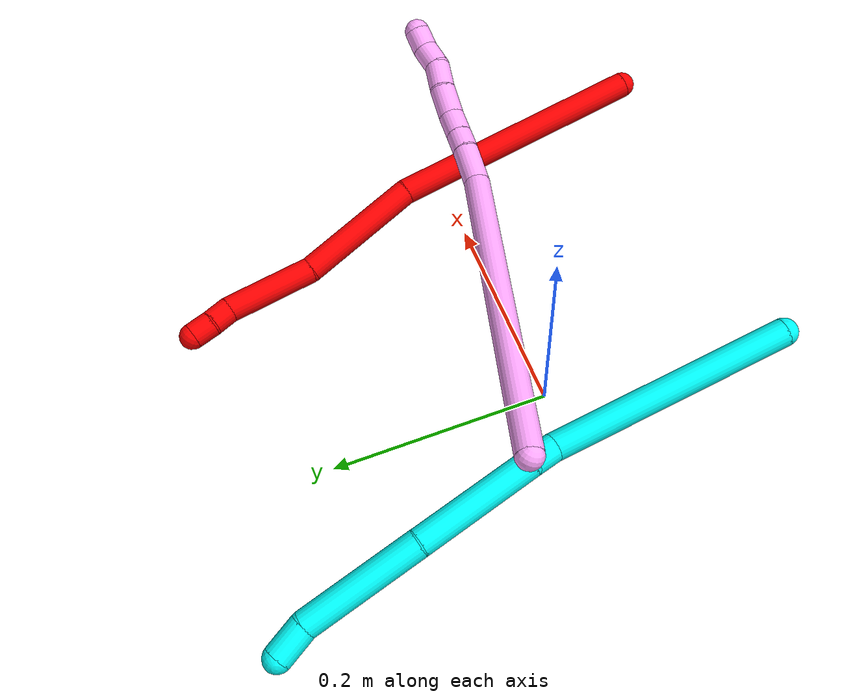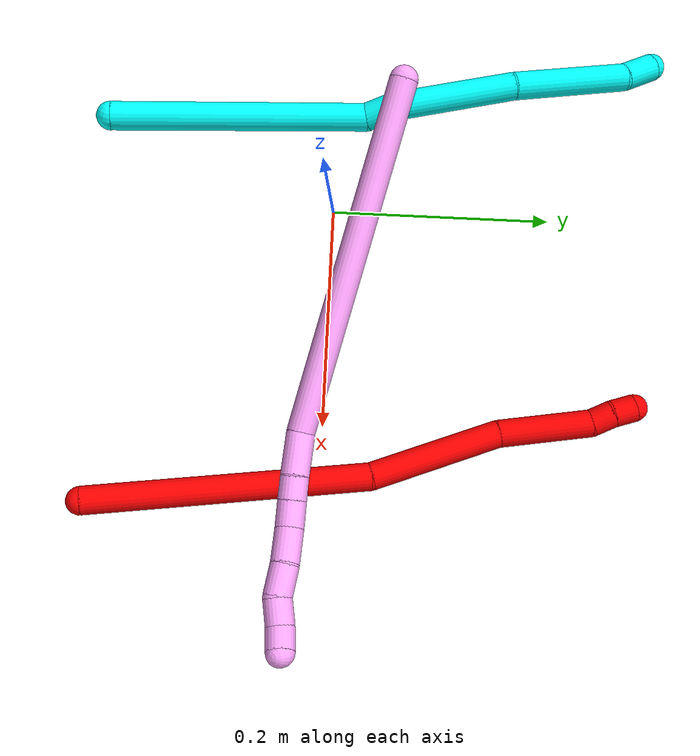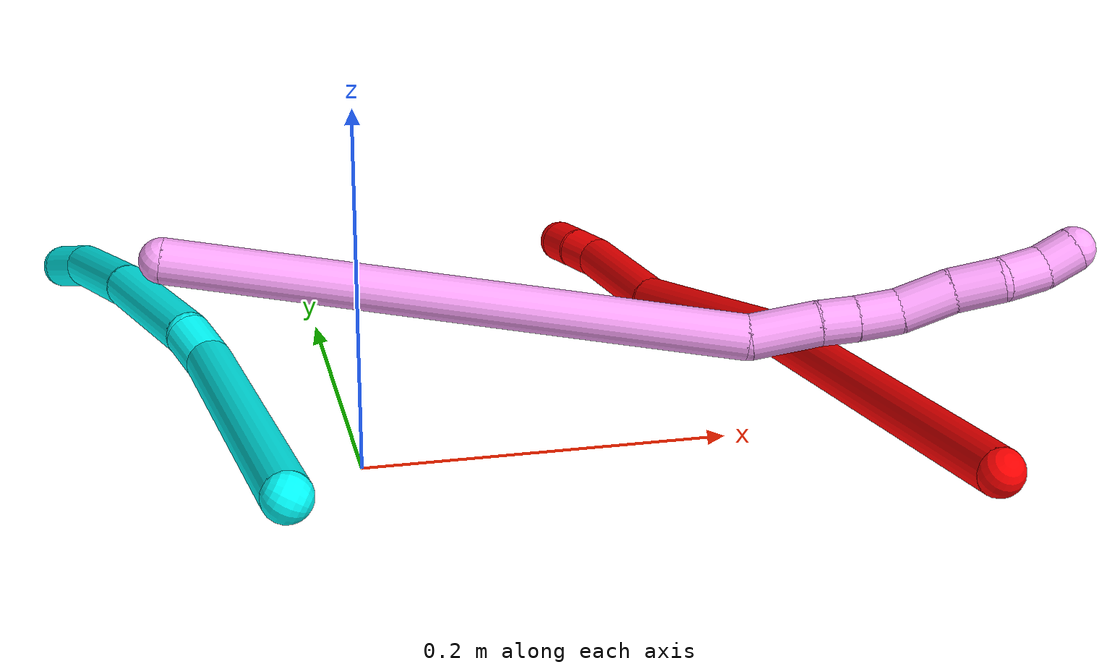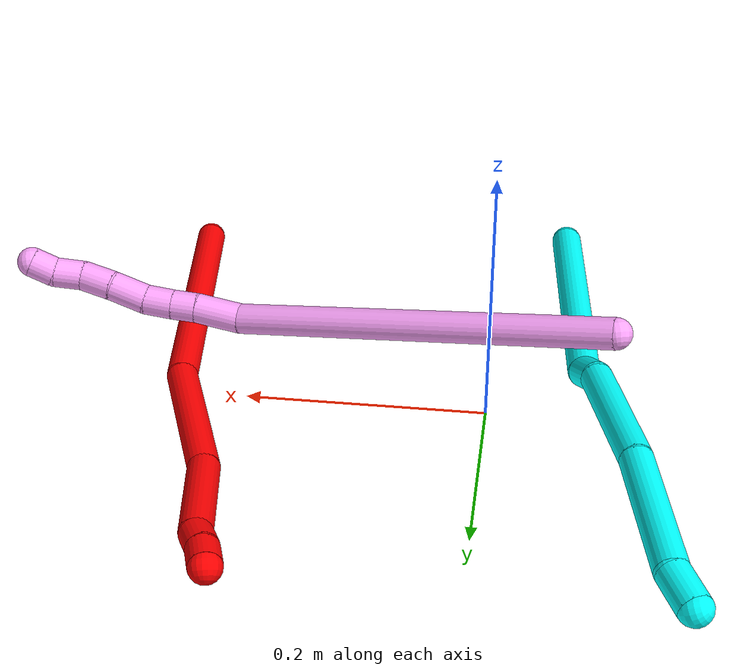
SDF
<sdf version="1.7">
 <world name="default">
  <model name="photoneo_s_sensor">
   <static>1</static>
   <pose>0 0 2 1.57079 1.57079 3.14159</pose>
   <link name="link">
    <inertial><mass>0.1</mass></inertial>
    <sensor name="sensor" type="depth">
     <update_rate>30</update_rate>
     <camera>
      <horizontal_fov>1.22</horizontal_fov>
      <image><width>1920</width><height>1200</height><format>B8G8R8</format></image>
      <clip><near>0.1</near><far>4</far></clip>
      <depth_camera><output>points</output></depth_camera>
     </camera>
     <plugin name="camera_plugin" filename="libgazebo_ros_depth_camera.so">
      <baseline>0.2</baseline>
      <alwaysOn>1</alwaysOn>
      <updateRate>0.0</updateRate>
      <cameraName>camera_ir</cameraName>
      <imageTopicName>/camera/color/image_raw</imageTopicName>
      <cameraInfoTopicName>/camera/color/camera_info</cameraInfoTopicName>
      <depthImageTopicName>/camera/depth/image_raw</depthImageTopicName>
      <depthImageCameraInfoTopicName>/camera/depth/camera_info</depthImageCameraInfoTopicName>
      <pointCloudTopicName>/camera/depth/points</pointCloudTopicName>
      <frameName>fr_optical</frameName>
      <pointCloudCutoff>0.1</pointCloudCutoff>
      <pointCloudCutoffMax>2.0</pointCloudCutoffMax>
      <distortionK1>0</distortionK1>
      <distortionK2>0</distortionK2>
      <distortionK3>0</distortionK3>
      <distortionT1>0</distortionT1>
      <distortionT2>0</distortionT2>
      <CxPrime>0</CxPrime>
      <Cx>0</Cx>
      <Cy>0</Cy>
      <focalLength>0</focalLength>
      <hackBaseline>0</hackBaseline>
     </plugin>
    </sensor>
   </link>
  </model>
  <model name="bin">
   <static>1</static>
   <link name="bottom">
    <collision name="collision-bottom">
     <pose>0 0 -0.01 0 -0 0</pose>
     <geometry><box><size>0.8 0.6 0.02</size></box></geometry>
     <surface>
      <friction><ode><mu>100</mu><mu2>100</mu2></ode></friction>
      <contact><collide_bitmask>65535</collide_bitmask></contact>
     </surface>
    </collision>
   </link>
   <link name="west_wall">
    <collision name="collision-west_wall">
     <pose>-0.41 0 0.1 0 -0 0</pose>
     <geometry><box><size>0.02 0.6 0.2</size></box></geometry>
     <surface>
      <friction><ode><mu>100</mu><mu2>100</mu2></ode></friction>
      <contact><collide_bitmask>65535</collide_bitmask></contact>
     </surface>
    </collision>
   </link>
   <link name="east_wall">
    <collision name="collision-east_wall">
     <pose>0.41 0 0.1 0 -0 0</pose>
     <geometry><box><size>0.02 0.6 0.2</size></box></geometry>
     <surface>
      <friction><ode><mu>100</mu><mu2>100</mu2></ode></friction>
      <contact><collide_bitmask>65535</collide_bitmask></contact>
     </surface>
    </collision>
   </link>
   <link name="south_wall">
    <collision name="collision-south_wall">
     <pose>0 -0.31 0.1 0 -0 0</pose>
     <geometry><box><size>0.8 0.02 0.2</size></box></geometry>
     <surface>
      <friction><ode><mu>100</mu><mu2>100</mu2></ode></friction>
      <contact><collide_bitmask>65535</collide_bitmask></contact>
     </surface>
    </collision>
   </link>
   <link name="north_wall">
    <collision name="collision-north_wall">
     <pose>0 0.31 0.1 0 -0 0</pose>
     <geometry><box><size>0.8 0.02 0.2</size></box></geometry>
     <surface>
      <friction><ode><mu>100</mu><mu2>100</mu2></ode></friction>
      <contact><collide_bitmask>65535</collide_bitmask></contact>
     </surface>
    </collision>
   </link>
  </model>
  <model name="2">
   <static>0</static>
   <link name="2">
    <collision name="collision-cylinder-e_1_1_4">
     <pose>0.048197 0.070703 0.091486 -0.657953 0.394947 -0.136396</pose>
     <geometry><cylinder><radius>0.0125</radius><length>0.250531</length></cylinder></geometry>
     <surface>
      <friction><ode><mu>1.16</mu><mu2>1.16</mu2><slip1>0</slip1><slip2>0</slip2></ode></friction>
      <contact><ode><kp>1e+06</kp><kd>1</kd><max_vel>0</max_vel><min_depth>0.001</min_depth></ode></contact>
     </surface>
    </collision>
    <visual name="visual-cylinder-e_1_1_4">
     <pose>0.048197 0.070703 0.091486 -0.657953 0.394947 -0.136396</pose>
     <geometry><cylinder><radius>0.0125</radius><length>0.250531</length></cylinder></geometry>
     <material><ambient>1 0 0 1</ambient></material>
    </visual>
    <collision name="collision-cylinder-e_2_4_5">
     <pose>0.128705 0.164195 0.22948 -0.455621 0.55777 -0.132576</pose>
     <geometry><cylinder><radius>0.0125</radius><length>0.122089</length></cylinder></geometry>
     <surface>
      <friction><ode><mu>1.16</mu><mu2>1.16</mu2><slip1>0</slip1><slip2>0</slip2></ode></friction>
      <contact><ode><kp>1e+06</kp><kd>1</kd><max_vel>0</max_vel><min_depth>0.001</min_depth></ode></contact>
     </surface>
    </collision>
    <visual name="visual-cylinder-e_2_4_5">
     <pose>0.128705 0.164195 0.22948 -0.455621 0.55777 -0.132576</pose>
     <geometry><cylinder><radius>0.0125</radius><length>0.122089</length></cylinder></geometry>
     <material><ambient>1 0 0 1</ambient></material>
    </visual>
    <collision name="collision-cylinder-e_3_5_6">
     <pose>0.179892 0.211521 0.305422 -0.694923 0.45774 -0.16833</pose>
     <geometry><cylinder><radius>0.0125</radius><length>0.085432</length></cylinder></geometry>
     <surface>
      <friction><ode><mu>1.16</mu><mu2>1.16</mu2><slip1>0</slip1><slip2>0</slip2></ode></friction>
      <contact><ode><kp>1e+06</kp><kd>1</kd><max_vel>0</max_vel><min_depth>0.001</min_depth></ode></contact>
     </surface>
    </collision>
    <visual name="visual-cylinder-e_3_5_6">
     <pose>0.179892 0.211521 0.305422 -0.694923 0.45774 -0.16833</pose>
     <geometry><cylinder><radius>0.0125</radius><length>0.085432</length></cylinder></geometry>
     <material><ambient>1 0 0 1</ambient></material>
    </visual>
    <collision name="collision-cylinder-e_4_6_7">
     <pose>0.205884 0.240186 0.341524 -0.554228 0.736655 -0.218672</pose>
     <geometry><cylinder><radius>0.0125</radius><length>0.021179</length></cylinder></geometry>
     <surface>
      <friction><ode><mu>1.16</mu><mu2>1.16</mu2><slip1>0</slip1><slip2>0</slip2></ode></friction>
      <contact><ode><kp>1e+06</kp><kd>1</kd><max_vel>0</max_vel><min_depth>0.001</min_depth></ode></contact>
     </surface>
    </collision>
    <visual name="visual-cylinder-e_4_6_7">
     <pose>0.205884 0.240186 0.341524 -0.554228 0.736655 -0.218672</pose>
     <geometry><cylinder><radius>0.0125</radius><length>0.021179</length></cylinder></geometry>
     <material><ambient>1 0 0 1</ambient></material>
    </visual>
    <collision name="collision-cylinder-e_5_7_2">
     <pose>0.218574 0.249022 0.355581 -0.567336 0.566871 -0.169426</pose>
     <geometry><cylinder><radius>0.0125</radius><length>0.020769</length></cylinder></geometry>
     <surface>
      <friction><ode><mu>1.16</mu><mu2>1.16</mu2><slip1>0</slip1><slip2>0</slip2></ode></friction>
      <contact><ode><kp>1e+06</kp><kd>1</kd><max_vel>0</max_vel><min_depth>0.001</min_depth></ode></contact>
     </surface>
    </collision>
    <visual name="visual-cylinder-e_5_7_2">
     <pose>0.218574 0.249022 0.355581 -0.567336 0.566871 -0.169426</pose>
     <geometry><cylinder><radius>0.0125</radius><length>0.020769</length></cylinder></geometry>
     <material><ambient>1 0 0 1</ambient></material>
    </visual>
    <collision name="collision-sphere-2">
     <pose>0.224151 0.253729 0.362969 0 -0 0</pose>
     <geometry><sphere><radius>0.0125</radius></sphere></geometry>
     <surface>
      <friction><ode><mu>1.16</mu><mu2>1.16</mu2><slip1>0</slip1><slip2>0</slip2></ode></friction>
      <contact><ode><kp>1e+06</kp><kd>1</kd><max_vel>0</max_vel><min_depth>0.001</min_depth></ode></contact>
     </surface>
    </collision>
    <visual name="visual-sphere-2">
     <pose>0.224151 0.253729 0.362969 0 -0 0</pose>
     <geometry><sphere><radius>0.0125</radius></sphere></geometry>
     <material><ambient>1 0 0 1</ambient></material>
    </visual>
    <collision name="collision-sphere-7">
     <pose>0.212998 0.244314 0.348193 0 -0 0</pose>
     <geometry><sphere><radius>0.0125</radius></sphere></geometry>
     <surface>
      <friction><ode><mu>1.16</mu><mu2>1.16</mu2><slip1>0</slip1><slip2>0</slip2></ode></friction>
      <contact><ode><kp>1e+06</kp><kd>1</kd><max_vel>0</max_vel><min_depth>0.001</min_depth></ode></contact>
     </surface>
    </collision>
    <visual name="visual-sphere-7">
     <pose>0.212998 0.244314 0.348193 0 -0 0</pose>
     <geometry><sphere><radius>0.0125</radius></sphere></geometry>
     <material><ambient>1 0 0 1</ambient></material>
    </visual>
    <collision name="collision-sphere-6">
     <pose>0.19877 0.236058 0.334854 0 -0 0</pose>
     <geometry><sphere><radius>0.0125</radius></sphere></geometry>
     <surface>
      <friction><ode><mu>1.16</mu><mu2>1.16</mu2><slip1>0</slip1><slip2>0</slip2></ode></friction>
      <contact><ode><kp>1e+06</kp><kd>1</kd><max_vel>0</max_vel><min_depth>0.001</min_depth></ode></contact>
     </surface>
    </collision>
    <visual name="visual-sphere-6">
     <pose>0.19877 0.236058 0.334854 0 -0 0</pose>
     <geometry><sphere><radius>0.0125</radius></sphere></geometry>
     <material><ambient>1 0 0 1</ambient></material>
    </visual>
    <collision name="collision-sphere-5">
     <pose>0.161015 0.186985 0.275989 0 -0 0</pose>
     <geometry><sphere><radius>0.0125</radius></sphere></geometry>
     <surface>
      <friction><ode><mu>1.16</mu><mu2>1.16</mu2><slip1>0</slip1><slip2>0</slip2></ode></friction>
      <contact><ode><kp>1e+06</kp><kd>1</kd><max_vel>0</max_vel><min_depth>0.001</min_depth></ode></contact>
     </surface>
    </collision>
    <visual name="visual-sphere-5">
     <pose>0.161015 0.186985 0.275989 0 -0 0</pose>
     <geometry><sphere><radius>0.0125</radius></sphere></geometry>
     <material><ambient>1 0 0 1</ambient></material>
    </visual>
    <collision name="collision-sphere-1">
     <geometry><sphere><radius>0.0125</radius></sphere></geometry>
     <surface>
      <friction><ode><mu>1.16</mu><mu2>1.16</mu2><slip1>0</slip1><slip2>0</slip2></ode></friction>
      <contact><ode><kp>1e+06</kp><kd>1</kd><max_vel>0</max_vel><min_depth>0.001</min_depth></ode></contact>
     </surface>
    </collision>
    <visual name="visual-sphere-1">
     <geometry><sphere><radius>0.0125</radius></sphere></geometry>
     <material><ambient>1 0 0 1</ambient></material>
    </visual>
    <collision name="collision-sphere-4">
     <pose>0.096394 0.141406 0.182971 0 -0 0</pose>
     <geometry><sphere><radius>0.0125</radius></sphere></geometry>
     <surface>
      <friction><ode><mu>1.16</mu><mu2>1.16</mu2><slip1>0</slip1><slip2>0</slip2></ode></friction>
      <contact><ode><kp>1e+06</kp><kd>1</kd><max_vel>0</max_vel><min_depth>0.001</min_depth></ode></contact>
     </surface>
    </collision>
    <visual name="visual-sphere-4">
     <pose>0.096394 0.141406 0.182971 0 -0 0</pose>
     <geometry><sphere><radius>0.0125</radius></sphere></geometry>
     <material><ambient>1 0 0 1</ambient></material>
    </visual>
    <inertial>
     <pose>0.104114 0.132178 0.183296 0 -0 0</pose>
     <mass>0.5</mass>
     <inertia>
      <ixx>0.001216</ixx>
      <ixy>0</ixy>
      <ixz>0</ixz>
      <iyy>0.001096</iyy>
      <iyz>0</iyz>
      <izz>-0.001425</izz>
     </inertia>
    </inertial>
   </link>
   <pose>0.273715 -0.200627 0.066262 2.59408 -0.484896 2.7462</pose>
  </model>
  <model name="3">
   <static>0</static>
   <link name="3">
    <collision name="collision-cylinder-e_1_1_4">
     <pose>0.016609 0.107378 -0.025523 -1.80416 0.149366 -0.18882</pose>
     <geometry><cylinder><radius>0.0125</radius><length>0.223226</length></cylinder></geometry>
     <surface>
      <friction><ode><mu>1.16</mu><mu2>1.16</mu2><slip1>0</slip1><slip2>0</slip2></ode></friction>
      <contact><ode><kp>1e+06</kp><kd>1</kd><max_vel>0</max_vel><min_depth>0.001</min_depth></ode></contact>
     </surface>
    </collision>
    <visual name="visual-cylinder-e_1_1_4">
     <pose>0.016609 0.107378 -0.025523 -1.80416 0.149366 -0.18882</pose>
     <geometry><cylinder><radius>0.0125</radius><length>0.223226</length></cylinder></geometry>
     <material><ambient>0.003922 1 0.996078 1</ambient></material>
    </visual>
    <collision name="collision-cylinder-e_2_4_5">
     <pose>0.032493 0.22522 -0.059104 -2.22701 -0.054901 0.111481</pose>
     <geometry><cylinder><radius>0.0125</radius><length>0.026452</length></cylinder></geometry>
     <surface>
      <friction><ode><mu>1.16</mu><mu2>1.16</mu2><slip1>0</slip1><slip2>0</slip2></ode></friction>
      <contact><ode><kp>1e+06</kp><kd>1</kd><max_vel>0</max_vel><min_depth>0.001</min_depth></ode></contact>
     </surface>
    </collision>
    <visual name="visual-cylinder-e_2_4_5">
     <pose>0.032493 0.22522 -0.059104 -2.22701 -0.054901 0.111481</pose>
     <geometry><cylinder><radius>0.0125</radius><length>0.026452</length></cylinder></geometry>
     <material><ambient>0.003922 1 0.996078 1</ambient></material>
    </visual>
    <collision name="collision-cylinder-e_3_5_6">
     <pose>0.043444 0.285431 -0.088028 -1.96797 0.213158 -0.319049</pose>
     <geometry><cylinder><radius>0.0125</radius><length>0.110392</length></cylinder></geometry>
     <surface>
      <friction><ode><mu>1.16</mu><mu2>1.16</mu2><slip1>0</slip1><slip2>0</slip2></ode></friction>
      <contact><ode><kp>1e+06</kp><kd>1</kd><max_vel>0</max_vel><min_depth>0.001</min_depth></ode></contact>
     </surface>
    </collision>
    <visual name="visual-cylinder-e_3_5_6">
     <pose>0.043444 0.285431 -0.088028 -1.96797 0.213158 -0.319049</pose>
     <geometry><cylinder><radius>0.0125</radius><length>0.110392</length></cylinder></geometry>
     <material><ambient>0.003922 1 0.996078 1</ambient></material>
    </visual>
    <collision name="collision-cylinder-e_4_6_7">
     <pose>0.071348 0.384813 -0.123801 -1.86252 0.303468 -0.405497</pose>
     <geometry><cylinder><radius>0.0125</radius><length>0.108611</length></cylinder></geometry>
     <surface>
      <friction><ode><mu>1.16</mu><mu2>1.16</mu2><slip1>0</slip1><slip2>0</slip2></ode></friction>
      <contact><ode><kp>1e+06</kp><kd>1</kd><max_vel>0</max_vel><min_depth>0.001</min_depth></ode></contact>
     </surface>
    </collision>
    <visual name="visual-cylinder-e_4_6_7">
     <pose>0.071348 0.384813 -0.123801 -1.86252 0.303468 -0.405497</pose>
     <geometry><cylinder><radius>0.0125</radius><length>0.108611</length></cylinder></geometry>
     <material><ambient>0.003922 1 0.996078 1</ambient></material>
    </visual>
    <collision name="collision-cylinder-e_5_7_2">
     <pose>0.09498 0.44653 -0.145371 -2.07486 0.492467 -0.804873</pose>
     <geometry><cylinder><radius>0.0125</radius><length>0.031318</length></cylinder></geometry>
     <surface>
      <friction><ode><mu>1.16</mu><mu2>1.16</mu2><slip1>0</slip1><slip2>0</slip2></ode></friction>
      <contact><ode><kp>1e+06</kp><kd>1</kd><max_vel>0</max_vel><min_depth>0.001</min_depth></ode></contact>
     </surface>
    </collision>
    <visual name="visual-cylinder-e_5_7_2">
     <pose>0.09498 0.44653 -0.145371 -2.07486 0.492467 -0.804873</pose>
     <geometry><cylinder><radius>0.0125</radius><length>0.031318</length></cylinder></geometry>
     <material><ambient>0.003922 1 0.996078 1</ambient></material>
    </visual>
    <collision name="collision-sphere-2">
     <pose>0.102384 0.458612 -0.152035 0 -0 0</pose>
     <geometry><sphere><radius>0.0125</radius></sphere></geometry>
     <surface>
      <friction><ode><mu>1.16</mu><mu2>1.16</mu2><slip1>0</slip1><slip2>0</slip2></ode></friction>
      <contact><ode><kp>1e+06</kp><kd>1</kd><max_vel>0</max_vel><min_depth>0.001</min_depth></ode></contact>
     </surface>
    </collision>
    <visual name="visual-sphere-2">
     <pose>0.102384 0.458612 -0.152035 0 -0 0</pose>
     <geometry><sphere><radius>0.0125</radius></sphere></geometry>
     <material><ambient>0.003922 1 0.996078 1</ambient></material>
    </visual>
    <collision name="collision-sphere-7">
     <pose>0.087577 0.434448 -0.138706 0 -0 0</pose>
     <geometry><sphere><radius>0.0125</radius></sphere></geometry>
     <surface>
      <friction><ode><mu>1.16</mu><mu2>1.16</mu2><slip1>0</slip1><slip2>0</slip2></ode></friction>
      <contact><ode><kp>1e+06</kp><kd>1</kd><max_vel>0</max_vel><min_depth>0.001</min_depth></ode></contact>
     </surface>
    </collision>
    <visual name="visual-sphere-7">
     <pose>0.087577 0.434448 -0.138706 0 -0 0</pose>
     <geometry><sphere><radius>0.0125</radius></sphere></geometry>
     <material><ambient>0.003922 1 0.996078 1</ambient></material>
    </visual>
    <collision name="collision-sphere-6">
     <pose>0.05512 0.335179 -0.108896 0 -0 0</pose>
     <geometry><sphere><radius>0.0125</radius></sphere></geometry>
     <surface>
      <friction><ode><mu>1.16</mu><mu2>1.16</mu2><slip1>0</slip1><slip2>0</slip2></ode></friction>
      <contact><ode><kp>1e+06</kp><kd>1</kd><max_vel>0</max_vel><min_depth>0.001</min_depth></ode></contact>
     </surface>
    </collision>
    <visual name="visual-sphere-6">
     <pose>0.05512 0.335179 -0.108896 0 -0 0</pose>
     <geometry><sphere><radius>0.0125</radius></sphere></geometry>
     <material><ambient>0.003922 1 0.996078 1</ambient></material>
    </visual>
    <collision name="collision-sphere-5">
     <pose>0.031767 0.235684 -0.067161 0 -0 0</pose>
     <geometry><sphere><radius>0.0125</radius></sphere></geometry>
     <surface>
      <friction><ode><mu>1.16</mu><mu2>1.16</mu2><slip1>0</slip1><slip2>0</slip2></ode></friction>
      <contact><ode><kp>1e+06</kp><kd>1</kd><max_vel>0</max_vel><min_depth>0.001</min_depth></ode></contact>
     </surface>
    </collision>
    <visual name="visual-sphere-5">
     <pose>0.031767 0.235684 -0.067161 0 -0 0</pose>
     <geometry><sphere><radius>0.0125</radius></sphere></geometry>
     <material><ambient>0.003922 1 0.996078 1</ambient></material>
    </visual>
    <collision name="collision-sphere-1">
     <geometry><sphere><radius>0.0125</radius></sphere></geometry>
     <surface>
      <friction><ode><mu>1.16</mu><mu2>1.16</mu2><slip1>0</slip1><slip2>0</slip2></ode></friction>
      <contact><ode><kp>1e+06</kp><kd>1</kd><max_vel>0</max_vel><min_depth>0.001</min_depth></ode></contact>
     </surface>
    </collision>
    <visual name="visual-sphere-1">
     <geometry><sphere><radius>0.0125</radius></sphere></geometry>
     <material><ambient>0.003922 1 0.996078 1</ambient></material>
    </visual>
    <collision name="collision-sphere-4">
     <pose>0.033219 0.214757 -0.051046 0 -0 0</pose>
     <geometry><sphere><radius>0.0125</radius></sphere></geometry>
     <surface>
      <friction><ode><mu>1.16</mu><mu2>1.16</mu2><slip1>0</slip1><slip2>0</slip2></ode></friction>
      <contact><ode><kp>1e+06</kp><kd>1</kd><max_vel>0</max_vel><min_depth>0.001</min_depth></ode></contact>
     </surface>
    </collision>
    <visual name="visual-sphere-4">
     <pose>0.033219 0.214757 -0.051046 0 -0 0</pose>
     <geometry><sphere><radius>0.0125</radius></sphere></geometry>
     <material><ambient>0.003922 1 0.996078 1</ambient></material>
    </visual>
    <inertial>
     <pose>0.040174 0.234433 -0.069955 0 -0 0</pose>
     <mass>0.5</mass>
     <inertia>
      <ixx>0.000874</ixx>
      <ixy>0</ixy>
      <ixz>0</ixz>
      <iyy>-0.000459</iyy>
      <iyz>0</iyz>
      <izz>-0.001322</izz>
     </inertia>
    </inertial>
   </link>
   <pose>-0.058899 -0.19306 0.083968 -2.92771 1.07291 3.12891</pose>
  </model>
  <model name="4">
   <static>0</static>
   <link name="4">
    <collision name="collision-cylinder-e_1_1_4">
     <pose>0.135691 -0.074308 0.02827 1.20726 1.04079 0.752606</pose>
     <geometry><cylinder><radius>0.0125</radius><length>0.314534</length></cylinder></geometry>
     <surface>
      <friction><ode><mu>1.16</mu><mu2>1.16</mu2><slip1>0</slip1><slip2>0</slip2></ode></friction>
      <contact><ode><kp>1e+06</kp><kd>1</kd><max_vel>0</max_vel><min_depth>0.001</min_depth></ode></contact>
     </surface>
    </collision>
    <visual name="visual-cylinder-e_1_1_4">
     <pose>0.135691 -0.074308 0.02827 1.20726 1.04079 0.752606</pose>
     <geometry><cylinder><radius>0.0125</radius><length>0.314534</length></cylinder></geometry>
     <material><ambient>1 0.65098 0.996078 1</ambient></material>
    </visual>
    <collision name="collision-cylinder-e_2_4_5">
     <pose>0.288839 -0.152454 0.063329 0.514556 1.15067 0.338009</pose>
     <geometry><cylinder><radius>0.0125</radius><length>0.03824</length></cylinder></geometry>
     <surface>
      <friction><ode><mu>1.16</mu><mu2>1.16</mu2><slip1>0</slip1><slip2>0</slip2></ode></friction>
      <contact><ode><kp>1e+06</kp><kd>1</kd><max_vel>0</max_vel><min_depth>0.001</min_depth></ode></contact>
     </surface>
    </collision>
    <visual name="visual-cylinder-e_2_4_5">
     <pose>0.288839 -0.152454 0.063329 0.514556 1.15067 0.338009</pose>
     <geometry><cylinder><radius>0.0125</radius><length>0.03824</length></cylinder></geometry>
     <material><ambient>1 0.65098 0.996078 1</ambient></material>
    </visual>
    <collision name="collision-cylinder-e_3_5_6">
     <pose>0.315927 -0.158679 0.072876 0.713436 1.20875 0.503773</pose>
     <geometry><cylinder><radius>0.0125</radius><length>0.020596</length></cylinder></geometry>
     <surface>
      <friction><ode><mu>1.16</mu><mu2>1.16</mu2><slip1>0</slip1><slip2>0</slip2></ode></friction>
      <contact><ode><kp>1e+06</kp><kd>1</kd><max_vel>0</max_vel><min_depth>0.001</min_depth></ode></contact>
     </surface>
    </collision>
    <visual name="visual-cylinder-e_3_5_6">
     <pose>0.315927 -0.158679 0.072876 0.713436 1.20875 0.503773</pose>
     <geometry><cylinder><radius>0.0125</radius><length>0.020596</length></cylinder></geometry>
     <material><ambient>1 0.65098 0.996078 1</ambient></material>
    </visual>
    <collision name="collision-cylinder-e_4_6_7">
     <pose>0.336618 -0.16332 0.079248 0.557765 1.20314 0.388169</pose>
     <geometry><cylinder><radius>0.0125</radius><length>0.023705</length></cylinder></geometry>
     <surface>
      <friction><ode><mu>1.16</mu><mu2>1.16</mu2><slip1>0</slip1><slip2>0</slip2></ode></friction>
      <contact><ode><kp>1e+06</kp><kd>1</kd><max_vel>0</max_vel><min_depth>0.001</min_depth></ode></contact>
     </surface>
    </collision>
    <visual name="visual-cylinder-e_4_6_7">
     <pose>0.336618 -0.16332 0.079248 0.557765 1.20314 0.388169</pose>
     <geometry><cylinder><radius>0.0125</radius><length>0.023705</length></cylinder></geometry>
     <material><ambient>1 0.65098 0.996078 1</ambient></material>
    </visual>
    <collision name="collision-cylinder-e_5_7_8">
     <pose>0.361022 -0.166933 0.090275 0.181138 1.05671 0.105922</pose>
     <geometry><cylinder><radius>0.0125</radius><length>0.03065</length></cylinder></geometry>
     <surface>
      <friction><ode><mu>1.16</mu><mu2>1.16</mu2><slip1>0</slip1><slip2>0</slip2></ode></friction>
      <contact><ode><kp>1e+06</kp><kd>1</kd><max_vel>0</max_vel><min_depth>0.001</min_depth></ode></contact>
     </surface>
    </collision>
    <visual name="visual-cylinder-e_5_7_8">
     <pose>0.361022 -0.166933 0.090275 0.181138 1.05671 0.105922</pose>
     <geometry><cylinder><radius>0.0125</radius><length>0.03065</length></cylinder></geometry>
     <material><ambient>1 0.65098 0.996078 1</ambient></material>
    </visual>
    <collision name="collision-cylinder-e_6_8_9">
     <pose>0.386243 -0.17156 0.103743 0.495108 1.04566 0.289283</pose>
     <geometry><cylinder><radius>0.0125</radius><length>0.027455</length></cylinder></geometry>
     <surface>
      <friction><ode><mu>1.16</mu><mu2>1.16</mu2><slip1>0</slip1><slip2>0</slip2></ode></friction>
      <contact><ode><kp>1e+06</kp><kd>1</kd><max_vel>0</max_vel><min_depth>0.001</min_depth></ode></contact>
     </surface>
    </collision>
    <visual name="visual-cylinder-e_6_8_9">
     <pose>0.386243 -0.17156 0.103743 0.495108 1.04566 0.289283</pose>
     <geometry><cylinder><radius>0.0125</radius><length>0.027455</length></cylinder></geometry>
     <material><ambient>1 0.65098 0.996078 1</ambient></material>
    </visual>
    <collision name="collision-cylinder-e_7_9_10">
     <pose>0.409862 -0.174937 0.112564 0.038652 1.33934 0.030602</pose>
     <geometry><cylinder><radius>0.0125</radius><length>0.024124</length></cylinder></geometry>
     <surface>
      <friction><ode><mu>1.16</mu><mu2>1.16</mu2><slip1>0</slip1><slip2>0</slip2></ode></friction>
      <contact><ode><kp>1e+06</kp><kd>1</kd><max_vel>0</max_vel><min_depth>0.001</min_depth></ode></contact>
     </surface>
    </collision>
    <visual name="visual-cylinder-e_7_9_10">
     <pose>0.409862 -0.174937 0.112564 0.038652 1.33934 0.030602</pose>
     <geometry><cylinder><radius>0.0125</radius><length>0.024124</length></cylinder></geometry>
     <material><ambient>1 0.65098 0.996078 1</ambient></material>
    </visual>
    <collision name="collision-cylinder-e_8_10_2">
     <pose>0.430545 -0.174193 0.120467 -0.164063 1.04346 -0.094455</pose>
     <geometry><cylinder><radius>0.0125</radius><length>0.020697</length></cylinder></geometry>
     <surface>
      <friction><ode><mu>1.16</mu><mu2>1.16</mu2><slip1>0</slip1><slip2>0</slip2></ode></friction>
      <contact><ode><kp>1e+06</kp><kd>1</kd><max_vel>0</max_vel><min_depth>0.001</min_depth></ode></contact>
     </surface>
    </collision>
    <visual name="visual-cylinder-e_8_10_2">
     <pose>0.430545 -0.174193 0.120467 -0.164063 1.04346 -0.094455</pose>
     <geometry><cylinder><radius>0.0125</radius><length>0.020697</length></cylinder></geometry>
     <material><ambient>1 0.65098 0.996078 1</ambient></material>
    </visual>
    <collision name="collision-sphere-2">
     <pose>0.439487 -0.173343 0.125604 0 -0 0</pose>
     <geometry><sphere><radius>0.0125</radius></sphere></geometry>
     <surface>
      <friction><ode><mu>1.16</mu><mu2>1.16</mu2><slip1>0</slip1><slip2>0</slip2></ode></friction>
      <contact><ode><kp>1e+06</kp><kd>1</kd><max_vel>0</max_vel><min_depth>0.001</min_depth></ode></contact>
     </surface>
    </collision>
    <visual name="visual-sphere-2">
     <pose>0.439487 -0.173343 0.125604 0 -0 0</pose>
     <geometry><sphere><radius>0.0125</radius></sphere></geometry>
     <material><ambient>1 0.65098 0.996078 1</ambient></material>
    </visual>
    <collision name="collision-sphere-10">
     <pose>0.421602 -0.175044 0.115329 0 -0 0</pose>
     <geometry><sphere><radius>0.0125</radius></sphere></geometry>
     <surface>
      <friction><ode><mu>1.16</mu><mu2>1.16</mu2><slip1>0</slip1><slip2>0</slip2></ode></friction>
      <contact><ode><kp>1e+06</kp><kd>1</kd><max_vel>0</max_vel><min_depth>0.001</min_depth></ode></contact>
     </surface>
    </collision>
    <visual name="visual-sphere-10">
     <pose>0.421602 -0.175044 0.115329 0 -0 0</pose>
     <geometry><sphere><radius>0.0125</radius></sphere></geometry>
     <material><ambient>1 0.65098 0.996078 1</ambient></material>
    </visual>
    <collision name="collision-sphere-9">
     <pose>0.398121 -0.17483 0.109799 0 -0 0</pose>
     <geometry><sphere><radius>0.0125</radius></sphere></geometry>
     <surface>
      <friction><ode><mu>1.16</mu><mu2>1.16</mu2><slip1>0</slip1><slip2>0</slip2></ode></friction>
      <contact><ode><kp>1e+06</kp><kd>1</kd><max_vel>0</max_vel><min_depth>0.001</min_depth></ode></contact>
     </surface>
    </collision>
    <visual name="visual-sphere-9">
     <pose>0.398121 -0.17483 0.109799 0 -0 0</pose>
     <geometry><sphere><radius>0.0125</radius></sphere></geometry>
     <material><ambient>1 0.65098 0.996078 1</ambient></material>
    </visual>
    <collision name="collision-sphere-4">
     <pose>0.271382 -0.148616 0.056541 0 -0 0</pose>
     <geometry><sphere><radius>0.0125</radius></sphere></geometry>
     <surface>
      <friction><ode><mu>1.16</mu><mu2>1.16</mu2><slip1>0</slip1><slip2>0</slip2></ode></friction>
      <contact><ode><kp>1e+06</kp><kd>1</kd><max_vel>0</max_vel><min_depth>0.001</min_depth></ode></contact>
     </surface>
    </collision>
    <visual name="visual-sphere-4">
     <pose>0.271382 -0.148616 0.056541 0 -0 0</pose>
     <geometry><sphere><radius>0.0125</radius></sphere></geometry>
     <material><ambient>1 0.65098 0.996078 1</ambient></material>
    </visual>
    <collision name="collision-sphere-1">
     <geometry><sphere><radius>0.0125</radius></sphere></geometry>
     <surface>
      <friction><ode><mu>1.16</mu><mu2>1.16</mu2><slip1>0</slip1><slip2>0</slip2></ode></friction>
      <contact><ode><kp>1e+06</kp><kd>1</kd><max_vel>0</max_vel><min_depth>0.001</min_depth></ode></contact>
     </surface>
    </collision>
    <visual name="visual-sphere-1">
     <geometry><sphere><radius>0.0125</radius></sphere></geometry>
     <material><ambient>1 0.65098 0.996078 1</ambient></material>
    </visual>
    <collision name="collision-sphere-8">
     <pose>0.374366 -0.168291 0.097688 0 -0 0</pose>
     <geometry><sphere><radius>0.0125</radius></sphere></geometry>
     <surface>
      <friction><ode><mu>1.16</mu><mu2>1.16</mu2><slip1>0</slip1><slip2>0</slip2></ode></friction>
      <contact><ode><kp>1e+06</kp><kd>1</kd><max_vel>0</max_vel><min_depth>0.001</min_depth></ode></contact>
     </surface>
    </collision>
    <visual name="visual-sphere-8">
     <pose>0.374366 -0.168291 0.097688 0 -0 0</pose>
     <geometry><sphere><radius>0.0125</radius></sphere></geometry>
     <material><ambient>1 0.65098 0.996078 1</ambient></material>
    </visual>
    <collision name="collision-sphere-5">
     <pose>0.306296 -0.156292 0.070118 0 -0 0</pose>
     <geometry><sphere><radius>0.0125</radius></sphere></geometry>
     <surface>
      <friction><ode><mu>1.16</mu><mu2>1.16</mu2><slip1>0</slip1><slip2>0</slip2></ode></friction>
      <contact><ode><kp>1e+06</kp><kd>1</kd><max_vel>0</max_vel><min_depth>0.001</min_depth></ode></contact>
     </surface>
    </collision>
    <visual name="visual-sphere-5">
     <pose>0.306296 -0.156292 0.070118 0 -0 0</pose>
     <geometry><sphere><radius>0.0125</radius></sphere></geometry>
     <material><ambient>1 0.65098 0.996078 1</ambient></material>
    </visual>
    <collision name="collision-sphere-6">
     <pose>0.325557 -0.161066 0.075634 0 -0 0</pose>
     <geometry><sphere><radius>0.0125</radius></sphere></geometry>
     <surface>
      <friction><ode><mu>1.16</mu><mu2>1.16</mu2><slip1>0</slip1><slip2>0</slip2></ode></friction>
      <contact><ode><kp>1e+06</kp><kd>1</kd><max_vel>0</max_vel><min_depth>0.001</min_depth></ode></contact>
     </surface>
    </collision>
    <visual name="visual-sphere-6">
     <pose>0.325557 -0.161066 0.075634 0 -0 0</pose>
     <geometry><sphere><radius>0.0125</radius></sphere></geometry>
     <material><ambient>1 0.65098 0.996078 1</ambient></material>
    </visual>
    <collision name="collision-sphere-7">
     <pose>0.347678 -0.165575 0.082863 0 -0 0</pose>
     <geometry><sphere><radius>0.0125</radius></sphere></geometry>
     <surface>
      <friction><ode><mu>1.16</mu><mu2>1.16</mu2><slip1>0</slip1><slip2>0</slip2></ode></friction>
      <contact><ode><kp>1e+06</kp><kd>1</kd><max_vel>0</max_vel><min_depth>0.001</min_depth></ode></contact>
     </surface>
    </collision>
    <visual name="visual-sphere-7">
     <pose>0.347678 -0.165575 0.082863 0 -0 0</pose>
     <geometry><sphere><radius>0.0125</radius></sphere></geometry>
     <material><ambient>1 0.65098 0.996078 1</ambient></material>
    </visual>
    <inertial>
     <pose>0.217358 -0.107988 0.051034 0 -0 0</pose>
     <mass>0.5</mass>
     <inertia>
      <ixx>0.001906</ixx>
      <ixy>0</ixy>
      <ixz>0</ixz>
      <iyy>0.00302</iyy>
      <iyz>0</iyz>
      <izz>-0.001022</izz>
     </inertia>
    </inertial>
   </link>
   <pose>-0.09605 0.059184 0.103915 0.510104 0.060684 0.286944</pose>
  </model>
 </world>
</sdf>
